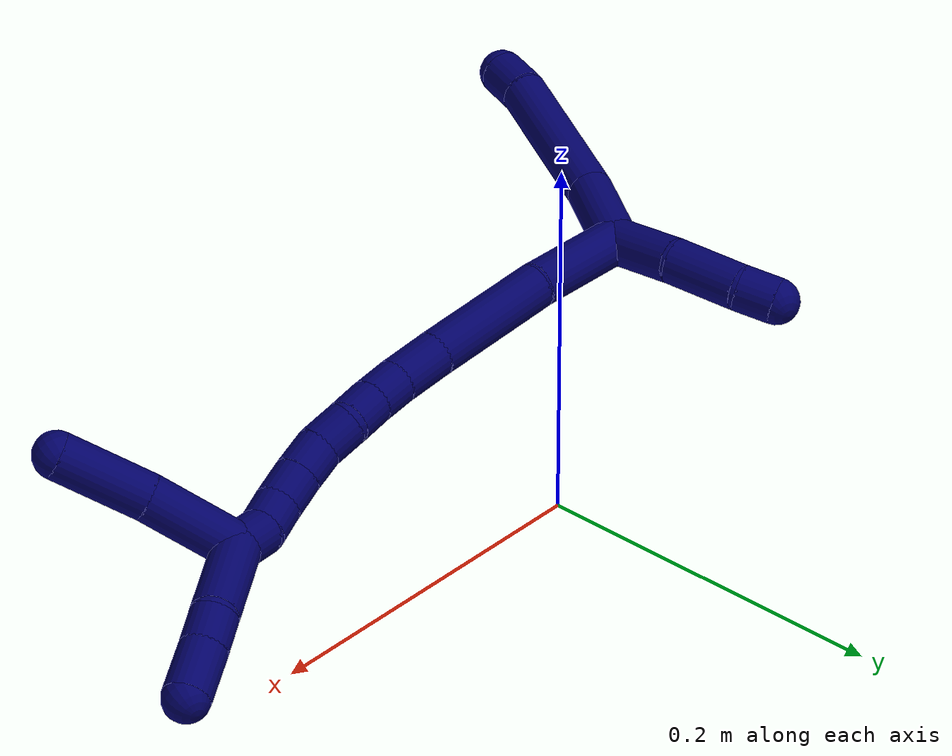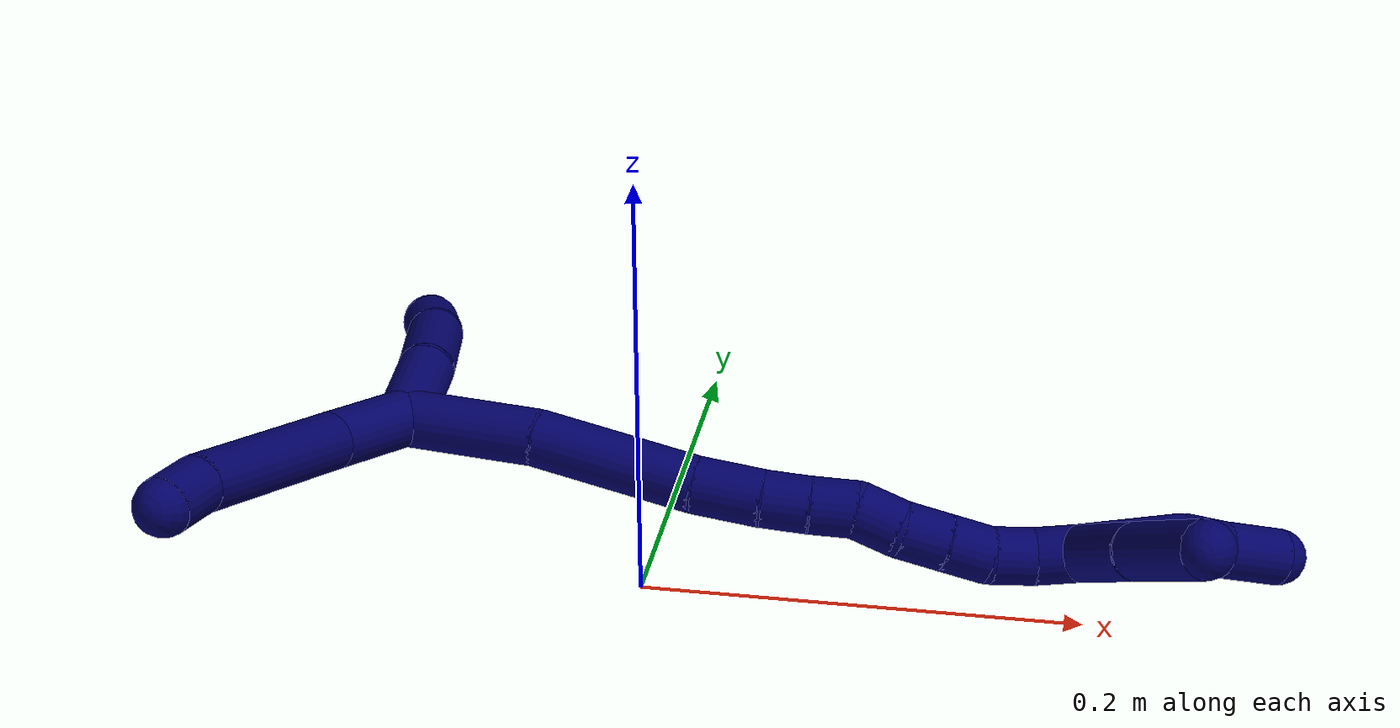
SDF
<sdf version="1.7">
 <world name="default">
  <model name="7">
   <static>0</static>
   <link name="7">
    <collision name="collision-cylinder-e_1_2_8">
     <pose>-0.004831 -0.001391 0.021174 0.065598 -0.223855 -0.007376</pose>
     <geometry><cylinder><radius>0.0125</radius><length>0.043525</length></cylinder></geometry>
     <surface>
      <friction><ode><mu>1.16</mu><mu2>1.16</mu2><slip1>0</slip1><slip2>0</slip2></ode></friction>
      <contact><ode><kp>1e+06</kp><kd>1</kd><max_vel>0</max_vel><min_depth>0.001</min_depth></ode></contact>
     </surface>
    </collision>
    <visual name="visual-cylinder-e_1_2_8">
     <pose>-0.004831 -0.001391 0.021174 0.065598 -0.223855 -0.007376</pose>
     <geometry><cylinder><radius>0.0125</radius><length>0.043525</length></cylinder></geometry>
     <material><ambient>0.003922 0 0.403922 1</ambient></material>
    </visual>
    <collision name="collision-cylinder-e_2_8_9">
     <pose>-0.013241 -0.003457 0.083955 0.016226 -0.085801 -0.000697</pose>
     <geometry><cylinder><radius>0.0125</radius><length>0.083533</length></cylinder></geometry>
     <surface>
      <friction><ode><mu>1.16</mu><mu2>1.16</mu2><slip1>0</slip1><slip2>0</slip2></ode></friction>
      <contact><ode><kp>1e+06</kp><kd>1</kd><max_vel>0</max_vel><min_depth>0.001</min_depth></ode></contact>
     </surface>
    </collision>
    <visual name="visual-cylinder-e_2_8_9">
     <pose>-0.013241 -0.003457 0.083955 0.016226 -0.085801 -0.000697</pose>
     <geometry><cylinder><radius>0.0125</radius><length>0.083533</length></cylinder></geometry>
     <material><ambient>0.003922 0 0.403922 1</ambient></material>
    </visual>
    <collision name="collision-cylinder-e_3_9_6">
     <pose>-0.016793 -0.006108 0.136862 0.173124 0.002366 0.000205</pose>
     <geometry><cylinder><radius>0.0125</radius><length>0.022942</length></cylinder></geometry>
     <surface>
      <friction><ode><mu>1.16</mu><mu2>1.16</mu2><slip1>0</slip1><slip2>0</slip2></ode></friction>
      <contact><ode><kp>1e+06</kp><kd>1</kd><max_vel>0</max_vel><min_depth>0.001</min_depth></ode></contact>
     </surface>
    </collision>
    <visual name="visual-cylinder-e_3_9_6">
     <pose>-0.016793 -0.006108 0.136862 0.173124 0.002366 0.000205</pose>
     <geometry><cylinder><radius>0.0125</radius><length>0.022942</length></cylinder></geometry>
     <material><ambient>0.003922 0 0.403922 1</ambient></material>
    </visual>
    <collision name="collision-cylinder-e_1_2_10">
     <pose>-0.00605 0.006619 -0.017758 -2.78482 -0.309003 1.42489</pose>
     <geometry><cylinder><radius>0.0125</radius><length>0.039788</length></cylinder></geometry>
     <surface>
      <friction><ode><mu>1.16</mu><mu2>1.16</mu2><slip1>0</slip1><slip2>0</slip2></ode></friction>
      <contact><ode><kp>1e+06</kp><kd>1</kd><max_vel>0</max_vel><min_depth>0.001</min_depth></ode></contact>
     </surface>
    </collision>
    <visual name="visual-cylinder-e_1_2_10">
     <pose>-0.00605 0.006619 -0.017758 -2.78482 -0.309003 1.42489</pose>
     <geometry><cylinder><radius>0.0125</radius><length>0.039788</length></cylinder></geometry>
     <material><ambient>0.003922 0 0.403922 1</ambient></material>
    </visual>
    <collision name="collision-cylinder-e_2_10_11">
     <pose>-0.020776 0.016917 -0.053061 -2.93488 -0.450781 2.29194</pose>
     <geometry><cylinder><radius>0.0125</radius><length>0.039831</length></cylinder></geometry>
     <surface>
      <friction><ode><mu>1.16</mu><mu2>1.16</mu2><slip1>0</slip1><slip2>0</slip2></ode></friction>
      <contact><ode><kp>1e+06</kp><kd>1</kd><max_vel>0</max_vel><min_depth>0.001</min_depth></ode></contact>
     </surface>
    </collision>
    <visual name="visual-cylinder-e_2_10_11">
     <pose>-0.020776 0.016917 -0.053061 -2.93488 -0.450781 2.29194</pose>
     <geometry><cylinder><radius>0.0125</radius><length>0.039831</length></cylinder></geometry>
     <material><ambient>0.003922 0 0.403922 1</ambient></material>
    </visual>
    <collision name="collision-cylinder-e_3_11_5">
     <pose>-0.035733 0.021287 -0.078601 -3.05536 -0.664009 2.89261</pose>
     <geometry><cylinder><radius>0.0125</radius><length>0.020381</length></cylinder></geometry>
     <surface>
      <friction><ode><mu>1.16</mu><mu2>1.16</mu2><slip1>0</slip1><slip2>0</slip2></ode></friction>
      <contact><ode><kp>1e+06</kp><kd>1</kd><max_vel>0</max_vel><min_depth>0.001</min_depth></ode></contact>
     </surface>
    </collision>
    <visual name="visual-cylinder-e_3_11_5">
     <pose>-0.035733 0.021287 -0.078601 -3.05536 -0.664009 2.89261</pose>
     <geometry><cylinder><radius>0.0125</radius><length>0.020381</length></cylinder></geometry>
     <material><ambient>0.003922 0 0.403922 1</ambient></material>
    </visual>
    <collision name="collision-cylinder-e_1_2_12">
     <pose>0.028294 -0.002065 -0.007425 2.87038 1.30487 2.78816</pose>
     <geometry><cylinder><radius>0.0125</radius><length>0.058649</length></cylinder></geometry>
     <surface>
      <friction><ode><mu>1.16</mu><mu2>1.16</mu2><slip1>0</slip1><slip2>0</slip2></ode></friction>
      <contact><ode><kp>1e+06</kp><kd>1</kd><max_vel>0</max_vel><min_depth>0.001</min_depth></ode></contact>
     </surface>
    </collision>
    <visual name="visual-cylinder-e_1_2_12">
     <pose>0.028294 -0.002065 -0.007425 2.87038 1.30487 2.78816</pose>
     <geometry><cylinder><radius>0.0125</radius><length>0.058649</length></cylinder></geometry>
     <material><ambient>0.003922 0 0.403922 1</ambient></material>
    </visual>
    <collision name="collision-cylinder-e_2_12_13">
     <pose>0.090457 -0.011516 -0.02358 2.43939 1.24516 2.19793</pose>
     <geometry><cylinder><radius>0.0125</radius><length>0.071497</length></cylinder></geometry>
     <surface>
      <friction><ode><mu>1.16</mu><mu2>1.16</mu2><slip1>0</slip1><slip2>0</slip2></ode></friction>
      <contact><ode><kp>1e+06</kp><kd>1</kd><max_vel>0</max_vel><min_depth>0.001</min_depth></ode></contact>
     </surface>
    </collision>
    <visual name="visual-cylinder-e_2_12_13">
     <pose>0.090457 -0.011516 -0.02358 2.43939 1.24516 2.19793</pose>
     <geometry><cylinder><radius>0.0125</radius><length>0.071497</length></cylinder></geometry>
     <material><ambient>0.003922 0 0.403922 1</ambient></material>
    </visual>
    <collision name="collision-cylinder-e_3_13_14">
     <pose>0.138129 -0.020928 -0.036854 2.72219 1.2249 2.55331</pose>
     <geometry><cylinder><radius>0.0125</radius><length>0.029343</length></cylinder></geometry>
     <surface>
      <friction><ode><mu>1.16</mu><mu2>1.16</mu2><slip1>0</slip1><slip2>0</slip2></ode></friction>
      <contact><ode><kp>1e+06</kp><kd>1</kd><max_vel>0</max_vel><min_depth>0.001</min_depth></ode></contact>
     </surface>
    </collision>
    <visual name="visual-cylinder-e_3_13_14">
     <pose>0.138129 -0.020928 -0.036854 2.72219 1.2249 2.55331</pose>
     <geometry><cylinder><radius>0.0125</radius><length>0.029343</length></cylinder></geometry>
     <material><ambient>0.003922 0 0.403922 1</ambient></material>
    </visual>
    <collision name="collision-cylinder-e_4_14_15">
     <pose>0.161185 -0.023885 -0.045267 2.90548 1.16464 2.78516</pose>
     <geometry><cylinder><radius>0.0125</radius><length>0.020145</length></cylinder></geometry>
     <surface>
      <friction><ode><mu>1.16</mu><mu2>1.16</mu2><slip1>0</slip1><slip2>0</slip2></ode></friction>
      <contact><ode><kp>1e+06</kp><kd>1</kd><max_vel>0</max_vel><min_depth>0.001</min_depth></ode></contact>
     </surface>
    </collision>
    <visual name="visual-cylinder-e_4_14_15">
     <pose>0.161185 -0.023885 -0.045267 2.90548 1.16464 2.78516</pose>
     <geometry><cylinder><radius>0.0125</radius><length>0.020145</length></cylinder></geometry>
     <material><ambient>0.003922 0 0.403922 1</ambient></material>
    </visual>
    <collision name="collision-cylinder-e_5_15_16">
     <pose>0.179415 -0.025495 -0.053537 2.9885 1.11029 2.89552</pose>
     <geometry><cylinder><radius>0.0125</radius><length>0.020042</length></cylinder></geometry>
     <surface>
      <friction><ode><mu>1.16</mu><mu2>1.16</mu2><slip1>0</slip1><slip2>0</slip2></ode></friction>
      <contact><ode><kp>1e+06</kp><kd>1</kd><max_vel>0</max_vel><min_depth>0.001</min_depth></ode></contact>
     </surface>
    </collision>
    <visual name="visual-cylinder-e_5_15_16">
     <pose>0.179415 -0.025495 -0.053537 2.9885 1.11029 2.89552</pose>
     <geometry><cylinder><radius>0.0125</radius><length>0.020042</length></cylinder></geometry>
     <material><ambient>0.003922 0 0.403922 1</ambient></material>
    </visual>
    <collision name="collision-cylinder-e_6_16_17">
     <pose>0.197417 -0.029726 -0.060676 2.22744 1.10964 1.8</pose>
     <geometry><cylinder><radius>0.0125</radius><length>0.020154</length></cylinder></geometry>
     <surface>
      <friction><ode><mu>1.16</mu><mu2>1.16</mu2><slip1>0</slip1><slip2>0</slip2></ode></friction>
      <contact><ode><kp>1e+06</kp><kd>1</kd><max_vel>0</max_vel><min_depth>0.001</min_depth></ode></contact>
     </surface>
    </collision>
    <visual name="visual-cylinder-e_6_16_17">
     <pose>0.197417 -0.029726 -0.060676 2.22744 1.10964 1.8</pose>
     <geometry><cylinder><radius>0.0125</radius><length>0.020154</length></cylinder></geometry>
     <material><ambient>0.003922 0 0.403922 1</ambient></material>
    </visual>
    <collision name="collision-cylinder-e_7_17_18">
     <pose>0.214673 -0.036077 -0.068372 2.62757 0.965592 2.21204</pose>
     <geometry><cylinder><radius>0.0125</radius><length>0.02002</length></cylinder></geometry>
     <surface>
      <friction><ode><mu>1.16</mu><mu2>1.16</mu2><slip1>0</slip1><slip2>0</slip2></ode></friction>
      <contact><ode><kp>1e+06</kp><kd>1</kd><max_vel>0</max_vel><min_depth>0.001</min_depth></ode></contact>
     </surface>
    </collision>
    <visual name="visual-cylinder-e_7_17_18">
     <pose>0.214673 -0.036077 -0.068372 2.62757 0.965592 2.21204</pose>
     <geometry><cylinder><radius>0.0125</radius><length>0.02002</length></cylinder></geometry>
     <material><ambient>0.003922 0 0.403922 1</ambient></material>
    </visual>
    <collision name="collision-cylinder-e_8_18_19">
     <pose>0.230914 -0.041773 -0.078671 2.64467 0.92187 2.19699</pose>
     <geometry><cylinder><radius>0.0125</radius><length>0.020103</length></cylinder></geometry>
     <surface>
      <friction><ode><mu>1.16</mu><mu2>1.16</mu2><slip1>0</slip1><slip2>0</slip2></ode></friction>
      <contact><ode><kp>1e+06</kp><kd>1</kd><max_vel>0</max_vel><min_depth>0.001</min_depth></ode></contact>
     </surface>
    </collision>
    <visual name="visual-cylinder-e_8_18_19">
     <pose>0.230914 -0.041773 -0.078671 2.64467 0.92187 2.19699</pose>
     <geometry><cylinder><radius>0.0125</radius><length>0.020103</length></cylinder></geometry>
     <material><ambient>0.003922 0 0.403922 1</ambient></material>
    </visual>
    <collision name="collision-cylinder-e_9_19_20">
     <pose>0.246638 -0.045265 -0.09036 3.04794 0.880148 2.94321</pose>
     <geometry><cylinder><radius>0.0125</radius><length>0.02002</length></cylinder></geometry>
     <surface>
      <friction><ode><mu>1.16</mu><mu2>1.16</mu2><slip1>0</slip1><slip2>0</slip2></ode></friction>
      <contact><ode><kp>1e+06</kp><kd>1</kd><max_vel>0</max_vel><min_depth>0.001</min_depth></ode></contact>
     </surface>
    </collision>
    <visual name="visual-cylinder-e_9_19_20">
     <pose>0.246638 -0.045265 -0.09036 3.04794 0.880148 2.94321</pose>
     <geometry><cylinder><radius>0.0125</radius><length>0.02002</length></cylinder></geometry>
     <material><ambient>0.003922 0 0.403922 1</ambient></material>
    </visual>
    <collision name="collision-cylinder-e_10_20_1">
     <pose>0.263459 -0.044709 -0.100714 -2.8613 1.14149 -2.709</pose>
     <geometry><cylinder><radius>0.0125</radius><length>0.020027</length></cylinder></geometry>
     <surface>
      <friction><ode><mu>1.16</mu><mu2>1.16</mu2><slip1>0</slip1><slip2>0</slip2></ode></friction>
      <contact><ode><kp>1e+06</kp><kd>1</kd><max_vel>0</max_vel><min_depth>0.001</min_depth></ode></contact>
     </surface>
    </collision>
    <visual name="visual-cylinder-e_10_20_1">
     <pose>0.263459 -0.044709 -0.100714 -2.8613 1.14149 -2.709</pose>
     <geometry><cylinder><radius>0.0125</radius><length>0.020027</length></cylinder></geometry>
     <material><ambient>0.003922 0 0.403922 1</ambient></material>
    </visual>
    <collision name="collision-cylinder-e_1_1_21">
     <pose>0.288836 -0.043181 -0.124044 -3.12222 0.699764 -3.08852</pose>
     <geometry><cylinder><radius>0.0125</radius><length>0.050531</length></cylinder></geometry>
     <surface>
      <friction><ode><mu>1.16</mu><mu2>1.16</mu2><slip1>0</slip1><slip2>0</slip2></ode></friction>
      <contact><ode><kp>1e+06</kp><kd>1</kd><max_vel>0</max_vel><min_depth>0.001</min_depth></ode></contact>
     </surface>
    </collision>
    <visual name="visual-cylinder-e_1_1_21">
     <pose>0.288836 -0.043181 -0.124044 -3.12222 0.699764 -3.08852</pose>
     <geometry><cylinder><radius>0.0125</radius><length>0.050531</length></cylinder></geometry>
     <material><ambient>0.003922 0 0.403922 1</ambient></material>
    </visual>
    <collision name="collision-cylinder-e_2_21_22">
     <pose>0.311414 -0.045301 -0.150732 2.81508 0.681448 2.27174</pose>
     <geometry><cylinder><radius>0.0125</radius><length>0.020021</length></cylinder></geometry>
     <surface>
      <friction><ode><mu>1.16</mu><mu2>1.16</mu2><slip1>0</slip1><slip2>0</slip2></ode></friction>
      <contact><ode><kp>1e+06</kp><kd>1</kd><max_vel>0</max_vel><min_depth>0.001</min_depth></ode></contact>
     </surface>
    </collision>
    <visual name="visual-cylinder-e_2_21_22">
     <pose>0.311414 -0.045301 -0.150732 2.81508 0.681448 2.27174</pose>
     <geometry><cylinder><radius>0.0125</radius><length>0.020021</length></cylinder></geometry>
     <material><ambient>0.003922 0 0.403922 1</ambient></material>
    </visual>
    <collision name="collision-cylinder-e_3_22_4">
     <pose>0.327323 -0.050618 -0.168894 2.88585 0.71053 2.47439</pose>
     <geometry><cylinder><radius>0.0125</radius><length>0.029448</length></cylinder></geometry>
     <surface>
      <friction><ode><mu>1.16</mu><mu2>1.16</mu2><slip1>0</slip1><slip2>0</slip2></ode></friction>
      <contact><ode><kp>1e+06</kp><kd>1</kd><max_vel>0</max_vel><min_depth>0.001</min_depth></ode></contact>
     </surface>
    </collision>
    <visual name="visual-cylinder-e_3_22_4">
     <pose>0.327323 -0.050618 -0.168894 2.88585 0.71053 2.47439</pose>
     <geometry><cylinder><radius>0.0125</radius><length>0.029448</length></cylinder></geometry>
     <material><ambient>0.003922 0 0.403922 1</ambient></material>
    </visual>
    <collision name="collision-cylinder-e_1_1_23">
     <pose>0.290561 -0.036312 -0.088491 -0.419811 0.791711 -0.177601</pose>
     <geometry><cylinder><radius>0.0125</radius><length>0.050585</length></cylinder></geometry>
     <surface>
      <friction><ode><mu>1.16</mu><mu2>1.16</mu2><slip1>0</slip1><slip2>0</slip2></ode></friction>
      <contact><ode><kp>1e+06</kp><kd>1</kd><max_vel>0</max_vel><min_depth>0.001</min_depth></ode></contact>
     </surface>
    </collision>
    <visual name="visual-cylinder-e_1_1_23">
     <pose>0.290561 -0.036312 -0.088491 -0.419811 0.791711 -0.177601</pose>
     <geometry><cylinder><radius>0.0125</radius><length>0.050585</length></cylinder></geometry>
     <material><ambient>0.003922 0 0.403922 1</ambient></material>
    </visual>
    <collision name="collision-cylinder-e_2_23_3">
     <pose>0.327677 -0.022307 -0.05815 -0.446837 0.884876 -0.214463</pose>
     <geometry><cylinder><radius>0.0125</radius><length>0.049415</length></cylinder></geometry>
     <surface>
      <friction><ode><mu>1.16</mu><mu2>1.16</mu2><slip1>0</slip1><slip2>0</slip2></ode></friction>
      <contact><ode><kp>1e+06</kp><kd>1</kd><max_vel>0</max_vel><min_depth>0.001</min_depth></ode></contact>
     </surface>
    </collision>
    <visual name="visual-cylinder-e_2_23_3">
     <pose>0.327677 -0.022307 -0.05815 -0.446837 0.884876 -0.214463</pose>
     <geometry><cylinder><radius>0.0125</radius><length>0.049415</length></cylinder></geometry>
     <material><ambient>0.003922 0 0.403922 1</ambient></material>
    </visual>
    <collision name="collision-sphere-3">
     <pose>0.346797 -0.015544 -0.044037 0 -0 0</pose>
     <geometry><sphere><radius>0.0125</radius></sphere></geometry>
     <surface>
      <friction><ode><mu>1.16</mu><mu2>1.16</mu2><slip1>0</slip1><slip2>0</slip2></ode></friction>
      <contact><ode><kp>1e+06</kp><kd>1</kd><max_vel>0</max_vel><min_depth>0.001</min_depth></ode></contact>
     </surface>
    </collision>
    <visual name="visual-sphere-3">
     <pose>0.346797 -0.015544 -0.044037 0 -0 0</pose>
     <geometry><sphere><radius>0.0125</radius></sphere></geometry>
     <material><ambient>0.003922 0 0.403922 1</ambient></material>
    </visual>
    <collision name="collision-sphere-23">
     <pose>0.308558 -0.029069 -0.072263 0 -0 0</pose>
     <geometry><sphere><radius>0.0125</radius></sphere></geometry>
     <surface>
      <friction><ode><mu>1.16</mu><mu2>1.16</mu2><slip1>0</slip1><slip2>0</slip2></ode></friction>
      <contact><ode><kp>1e+06</kp><kd>1</kd><max_vel>0</max_vel><min_depth>0.001</min_depth></ode></contact>
     </surface>
    </collision>
    <visual name="visual-sphere-23">
     <pose>0.308558 -0.029069 -0.072263 0 -0 0</pose>
     <geometry><sphere><radius>0.0125</radius></sphere></geometry>
     <material><ambient>0.003922 0 0.403922 1</ambient></material>
    </visual>
    <collision name="collision-sphere-4">
     <pose>0.336926 -0.053441 -0.179692 0 -0 0</pose>
     <geometry><sphere><radius>0.0125</radius></sphere></geometry>
     <surface>
      <friction><ode><mu>1.16</mu><mu2>1.16</mu2><slip1>0</slip1><slip2>0</slip2></ode></friction>
      <contact><ode><kp>1e+06</kp><kd>1</kd><max_vel>0</max_vel><min_depth>0.001</min_depth></ode></contact>
     </surface>
    </collision>
    <visual name="visual-sphere-4">
     <pose>0.336926 -0.053441 -0.179692 0 -0 0</pose>
     <geometry><sphere><radius>0.0125</radius></sphere></geometry>
     <material><ambient>0.003922 0 0.403922 1</ambient></material>
    </visual>
    <collision name="collision-sphere-22">
     <pose>0.317719 -0.047794 -0.158096 0 -0 0</pose>
     <geometry><sphere><radius>0.0125</radius></sphere></geometry>
     <surface>
      <friction><ode><mu>1.16</mu><mu2>1.16</mu2><slip1>0</slip1><slip2>0</slip2></ode></friction>
      <contact><ode><kp>1e+06</kp><kd>1</kd><max_vel>0</max_vel><min_depth>0.001</min_depth></ode></contact>
     </surface>
    </collision>
    <visual name="visual-sphere-22">
     <pose>0.317719 -0.047794 -0.158096 0 -0 0</pose>
     <geometry><sphere><radius>0.0125</radius></sphere></geometry>
     <material><ambient>0.003922 0 0.403922 1</ambient></material>
    </visual>
    <collision name="collision-sphere-21">
     <pose>0.305108 -0.042807 -0.143368 0 -0 0</pose>
     <geometry><sphere><radius>0.0125</radius></sphere></geometry>
     <surface>
      <friction><ode><mu>1.16</mu><mu2>1.16</mu2><slip1>0</slip1><slip2>0</slip2></ode></friction>
      <contact><ode><kp>1e+06</kp><kd>1</kd><max_vel>0</max_vel><min_depth>0.001</min_depth></ode></contact>
     </surface>
    </collision>
    <visual name="visual-sphere-21">
     <pose>0.305108 -0.042807 -0.143368 0 -0 0</pose>
     <geometry><sphere><radius>0.0125</radius></sphere></geometry>
     <material><ambient>0.003922 0 0.403922 1</ambient></material>
    </visual>
    <collision name="collision-sphere-1">
     <pose>0.272564 -0.043556 -0.104719 0 -0 0</pose>
     <geometry><sphere><radius>0.0125</radius></sphere></geometry>
     <surface>
      <friction><ode><mu>1.16</mu><mu2>1.16</mu2><slip1>0</slip1><slip2>0</slip2></ode></friction>
      <contact><ode><kp>1e+06</kp><kd>1</kd><max_vel>0</max_vel><min_depth>0.001</min_depth></ode></contact>
     </surface>
    </collision>
    <visual name="visual-sphere-1">
     <pose>0.272564 -0.043556 -0.104719 0 -0 0</pose>
     <geometry><sphere><radius>0.0125</radius></sphere></geometry>
     <material><ambient>0.003922 0 0.403922 1</ambient></material>
    </visual>
    <collision name="collision-sphere-11">
     <pose>-0.029453 0.020596 -0.070605 0 -0 0</pose>
     <geometry><sphere><radius>0.0125</radius></sphere></geometry>
     <surface>
      <friction><ode><mu>1.16</mu><mu2>1.16</mu2><slip1>0</slip1><slip2>0</slip2></ode></friction>
      <contact><ode><kp>1e+06</kp><kd>1</kd><max_vel>0</max_vel><min_depth>0.001</min_depth></ode></contact>
     </surface>
    </collision>
    <visual name="visual-sphere-11">
     <pose>-0.029453 0.020596 -0.070605 0 -0 0</pose>
     <geometry><sphere><radius>0.0125</radius></sphere></geometry>
     <material><ambient>0.003922 0 0.403922 1</ambient></material>
    </visual>
    <collision name="collision-sphere-10">
     <pose>-0.0121 0.013238 -0.035516 0 -0 0</pose>
     <geometry><sphere><radius>0.0125</radius></sphere></geometry>
     <surface>
      <friction><ode><mu>1.16</mu><mu2>1.16</mu2><slip1>0</slip1><slip2>0</slip2></ode></friction>
      <contact><ode><kp>1e+06</kp><kd>1</kd><max_vel>0</max_vel><min_depth>0.001</min_depth></ode></contact>
     </surface>
    </collision>
    <visual name="visual-sphere-10">
     <pose>-0.0121 0.013238 -0.035516 0 -0 0</pose>
     <geometry><sphere><radius>0.0125</radius></sphere></geometry>
     <material><ambient>0.003922 0 0.403922 1</ambient></material>
    </visual>
    <collision name="collision-sphere-6">
     <pose>-0.016766 -0.008084 0.148161 0 -0 0</pose>
     <geometry><sphere><radius>0.0125</radius></sphere></geometry>
     <surface>
      <friction><ode><mu>1.16</mu><mu2>1.16</mu2><slip1>0</slip1><slip2>0</slip2></ode></friction>
      <contact><ode><kp>1e+06</kp><kd>1</kd><max_vel>0</max_vel><min_depth>0.001</min_depth></ode></contact>
     </surface>
    </collision>
    <visual name="visual-sphere-6">
     <pose>-0.016766 -0.008084 0.148161 0 -0 0</pose>
     <geometry><sphere><radius>0.0125</radius></sphere></geometry>
     <material><ambient>0.003922 0 0.403922 1</ambient></material>
    </visual>
    <collision name="collision-sphere-9">
     <pose>-0.01682 -0.004132 0.125562 0 -0 0</pose>
     <geometry><sphere><radius>0.0125</radius></sphere></geometry>
     <surface>
      <friction><ode><mu>1.16</mu><mu2>1.16</mu2><slip1>0</slip1><slip2>0</slip2></ode></friction>
      <contact><ode><kp>1e+06</kp><kd>1</kd><max_vel>0</max_vel><min_depth>0.001</min_depth></ode></contact>
     </surface>
    </collision>
    <visual name="visual-sphere-9">
     <pose>-0.01682 -0.004132 0.125562 0 -0 0</pose>
     <geometry><sphere><radius>0.0125</radius></sphere></geometry>
     <material><ambient>0.003922 0 0.403922 1</ambient></material>
    </visual>
    <collision name="collision-sphere-2">
     <geometry><sphere><radius>0.0125</radius></sphere></geometry>
     <surface>
      <friction><ode><mu>1.16</mu><mu2>1.16</mu2><slip1>0</slip1><slip2>0</slip2></ode></friction>
      <contact><ode><kp>1e+06</kp><kd>1</kd><max_vel>0</max_vel><min_depth>0.001</min_depth></ode></contact>
     </surface>
    </collision>
    <visual name="visual-sphere-2">
     <geometry><sphere><radius>0.0125</radius></sphere></geometry>
     <material><ambient>0.003922 0 0.403922 1</ambient></material>
    </visual>
    <collision name="collision-sphere-19">
     <pose>0.238922 -0.044669 -0.084011 0 -0 0</pose>
     <geometry><sphere><radius>0.0125</radius></sphere></geometry>
     <surface>
      <friction><ode><mu>1.16</mu><mu2>1.16</mu2><slip1>0</slip1><slip2>0</slip2></ode></friction>
      <contact><ode><kp>1e+06</kp><kd>1</kd><max_vel>0</max_vel><min_depth>0.001</min_depth></ode></contact>
     </surface>
    </collision>
    <visual name="visual-sphere-19">
     <pose>0.238922 -0.044669 -0.084011 0 -0 0</pose>
     <geometry><sphere><radius>0.0125</radius></sphere></geometry>
     <material><ambient>0.003922 0 0.403922 1</ambient></material>
    </visual>
    <collision name="collision-sphere-8">
     <pose>-0.009662 -0.002782 0.042347 0 -0 0</pose>
     <geometry><sphere><radius>0.0125</radius></sphere></geometry>
     <surface>
      <friction><ode><mu>1.16</mu><mu2>1.16</mu2><slip1>0</slip1><slip2>0</slip2></ode></friction>
      <contact><ode><kp>1e+06</kp><kd>1</kd><max_vel>0</max_vel><min_depth>0.001</min_depth></ode></contact>
     </surface>
    </collision>
    <visual name="visual-sphere-8">
     <pose>-0.009662 -0.002782 0.042347 0 -0 0</pose>
     <geometry><sphere><radius>0.0125</radius></sphere></geometry>
     <material><ambient>0.003922 0 0.403922 1</ambient></material>
    </visual>
    <collision name="collision-sphere-5">
     <pose>-0.042013 0.021978 -0.086597 0 -0 0</pose>
     <geometry><sphere><radius>0.0125</radius></sphere></geometry>
     <surface>
      <friction><ode><mu>1.16</mu><mu2>1.16</mu2><slip1>0</slip1><slip2>0</slip2></ode></friction>
      <contact><ode><kp>1e+06</kp><kd>1</kd><max_vel>0</max_vel><min_depth>0.001</min_depth></ode></contact>
     </surface>
    </collision>
    <visual name="visual-sphere-5">
     <pose>-0.042013 0.021978 -0.086597 0 -0 0</pose>
     <geometry><sphere><radius>0.0125</radius></sphere></geometry>
     <material><ambient>0.003922 0 0.403922 1</ambient></material>
    </visual>
    <collision name="collision-sphere-12">
     <pose>0.056587 -0.004129 -0.01485 0 -0 0</pose>
     <geometry><sphere><radius>0.0125</radius></sphere></geometry>
     <surface>
      <friction><ode><mu>1.16</mu><mu2>1.16</mu2><slip1>0</slip1><slip2>0</slip2></ode></friction>
      <contact><ode><kp>1e+06</kp><kd>1</kd><max_vel>0</max_vel><min_depth>0.001</min_depth></ode></contact>
     </surface>
    </collision>
    <visual name="visual-sphere-12">
     <pose>0.056587 -0.004129 -0.01485 0 -0 0</pose>
     <geometry><sphere><radius>0.0125</radius></sphere></geometry>
     <material><ambient>0.003922 0 0.403922 1</ambient></material>
    </visual>
    <collision name="collision-sphere-13">
     <pose>0.124327 -0.018903 -0.032311 0 -0 0</pose>
     <geometry><sphere><radius>0.0125</radius></sphere></geometry>
     <surface>
      <friction><ode><mu>1.16</mu><mu2>1.16</mu2><slip1>0</slip1><slip2>0</slip2></ode></friction>
      <contact><ode><kp>1e+06</kp><kd>1</kd><max_vel>0</max_vel><min_depth>0.001</min_depth></ode></contact>
     </surface>
    </collision>
    <visual name="visual-sphere-13">
     <pose>0.124327 -0.018903 -0.032311 0 -0 0</pose>
     <geometry><sphere><radius>0.0125</radius></sphere></geometry>
     <material><ambient>0.003922 0 0.403922 1</ambient></material>
    </visual>
    <collision name="collision-sphere-14">
     <pose>0.151932 -0.022954 -0.041398 0 -0 0</pose>
     <geometry><sphere><radius>0.0125</radius></sphere></geometry>
     <surface>
      <friction><ode><mu>1.16</mu><mu2>1.16</mu2><slip1>0</slip1><slip2>0</slip2></ode></friction>
      <contact><ode><kp>1e+06</kp><kd>1</kd><max_vel>0</max_vel><min_depth>0.001</min_depth></ode></contact>
     </surface>
    </collision>
    <visual name="visual-sphere-14">
     <pose>0.151932 -0.022954 -0.041398 0 -0 0</pose>
     <geometry><sphere><radius>0.0125</radius></sphere></geometry>
     <material><ambient>0.003922 0 0.403922 1</ambient></material>
    </visual>
    <collision name="collision-sphere-15">
     <pose>0.170438 -0.024816 -0.049136 0 -0 0</pose>
     <geometry><sphere><radius>0.0125</radius></sphere></geometry>
     <surface>
      <friction><ode><mu>1.16</mu><mu2>1.16</mu2><slip1>0</slip1><slip2>0</slip2></ode></friction>
      <contact><ode><kp>1e+06</kp><kd>1</kd><max_vel>0</max_vel><min_depth>0.001</min_depth></ode></contact>
     </surface>
    </collision>
    <visual name="visual-sphere-15">
     <pose>0.170438 -0.024816 -0.049136 0 -0 0</pose>
     <geometry><sphere><radius>0.0125</radius></sphere></geometry>
     <material><ambient>0.003922 0 0.403922 1</ambient></material>
    </visual>
    <collision name="collision-sphere-16">
     <pose>0.188393 -0.026174 -0.057938 0 -0 0</pose>
     <geometry><sphere><radius>0.0125</radius></sphere></geometry>
     <surface>
      <friction><ode><mu>1.16</mu><mu2>1.16</mu2><slip1>0</slip1><slip2>0</slip2></ode></friction>
      <contact><ode><kp>1e+06</kp><kd>1</kd><max_vel>0</max_vel><min_depth>0.001</min_depth></ode></contact>
     </surface>
    </collision>
    <visual name="visual-sphere-16">
     <pose>0.188393 -0.026174 -0.057938 0 -0 0</pose>
     <geometry><sphere><radius>0.0125</radius></sphere></geometry>
     <material><ambient>0.003922 0 0.403922 1</ambient></material>
    </visual>
    <collision name="collision-sphere-17">
     <pose>0.206441 -0.033277 -0.063413 0 -0 0</pose>
     <geometry><sphere><radius>0.0125</radius></sphere></geometry>
     <surface>
      <friction><ode><mu>1.16</mu><mu2>1.16</mu2><slip1>0</slip1><slip2>0</slip2></ode></friction>
      <contact><ode><kp>1e+06</kp><kd>1</kd><max_vel>0</max_vel><min_depth>0.001</min_depth></ode></contact>
     </surface>
    </collision>
    <visual name="visual-sphere-17">
     <pose>0.206441 -0.033277 -0.063413 0 -0 0</pose>
     <geometry><sphere><radius>0.0125</radius></sphere></geometry>
     <material><ambient>0.003922 0 0.403922 1</ambient></material>
    </visual>
    <collision name="collision-sphere-18">
     <pose>0.222905 -0.038877 -0.073331 0 -0 0</pose>
     <geometry><sphere><radius>0.0125</radius></sphere></geometry>
     <surface>
      <friction><ode><mu>1.16</mu><mu2>1.16</mu2><slip1>0</slip1><slip2>0</slip2></ode></friction>
      <contact><ode><kp>1e+06</kp><kd>1</kd><max_vel>0</max_vel><min_depth>0.001</min_depth></ode></contact>
     </surface>
    </collision>
    <visual name="visual-sphere-18">
     <pose>0.222905 -0.038877 -0.073331 0 -0 0</pose>
     <geometry><sphere><radius>0.0125</radius></sphere></geometry>
     <material><ambient>0.003922 0 0.403922 1</ambient></material>
    </visual>
    <collision name="collision-sphere-20">
     <pose>0.254354 -0.045862 -0.096709 0 -0 0</pose>
     <geometry><sphere><radius>0.0125</radius></sphere></geometry>
     <surface>
      <friction><ode><mu>1.16</mu><mu2>1.16</mu2><slip1>0</slip1><slip2>0</slip2></ode></friction>
      <contact><ode><kp>1e+06</kp><kd>1</kd><max_vel>0</max_vel><min_depth>0.001</min_depth></ode></contact>
     </surface>
    </collision>
    <visual name="visual-sphere-20">
     <pose>0.254354 -0.045862 -0.096709 0 -0 0</pose>
     <geometry><sphere><radius>0.0125</radius></sphere></geometry>
     <material><ambient>0.003922 0 0.403922 1</ambient></material>
    </visual>
    <inertial>
     <pose>0.133355 -0.017534 -0.037525 0 -0 0</pose>
     <mass>0.75</mass>
     <inertia>
      <ixx>9.7e-05</ixx>
      <ixy>0</ixy>
      <ixz>0</ixz>
      <iyy>0.000194</iyy>
      <iyz>0</iyz>
      <izz>-8.1e-05</izz>
     </inertia>
    </inertial>
   </link>
   <pose>-0.093251 -0.042642 0.102399 1.32076 -0.089283 -0.293934</pose>
  </model>
 </world>
</sdf>
